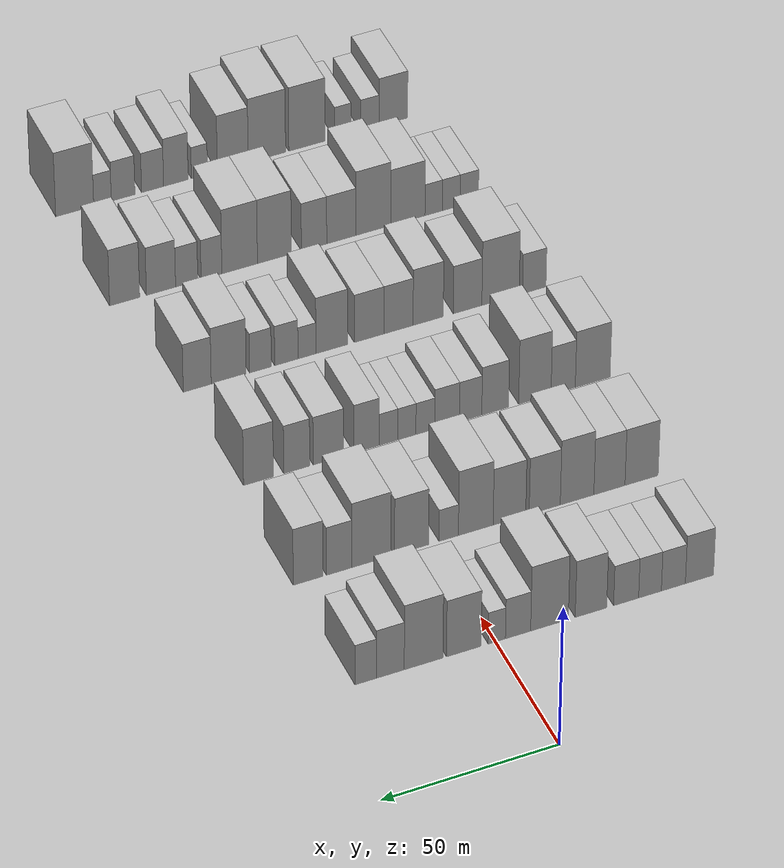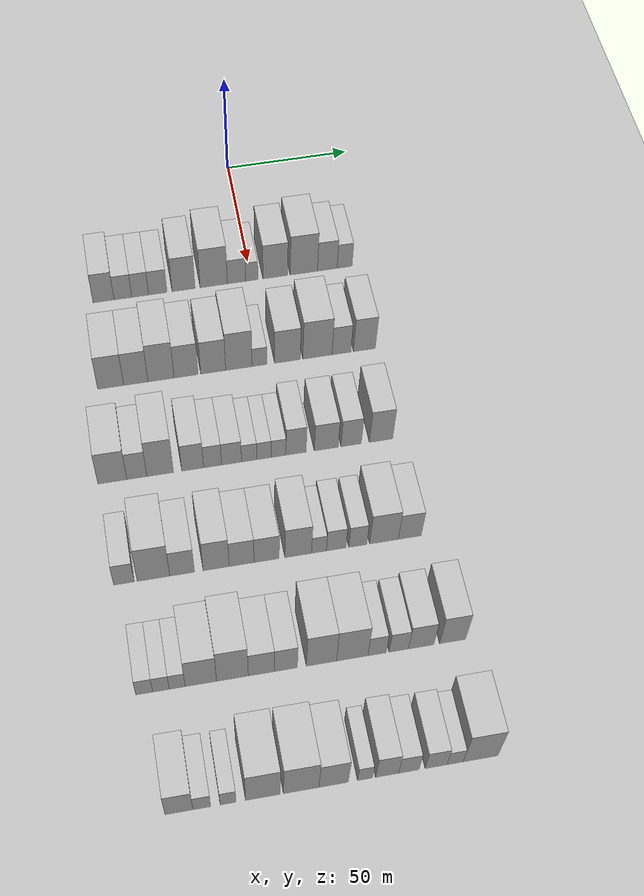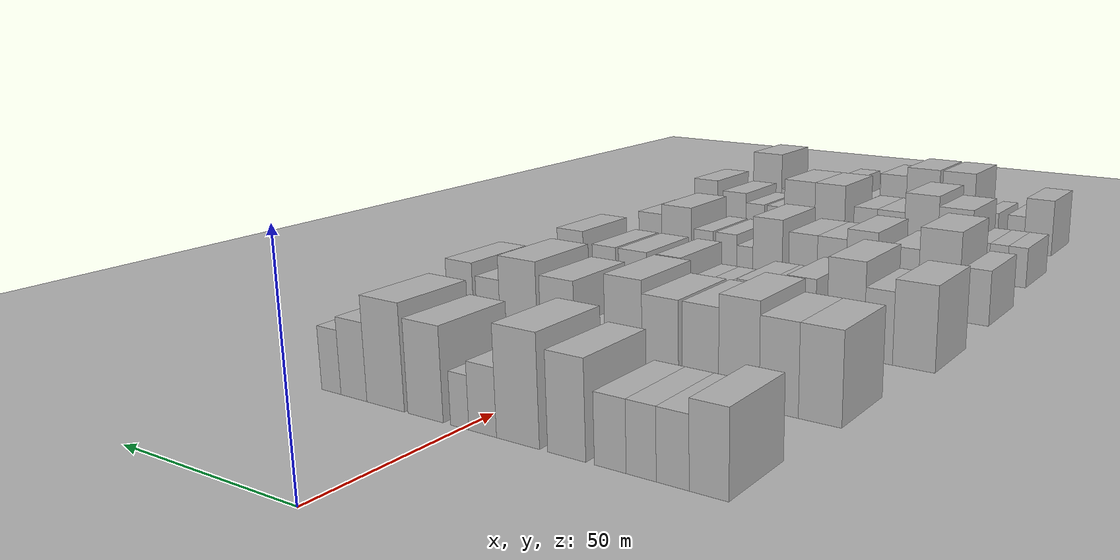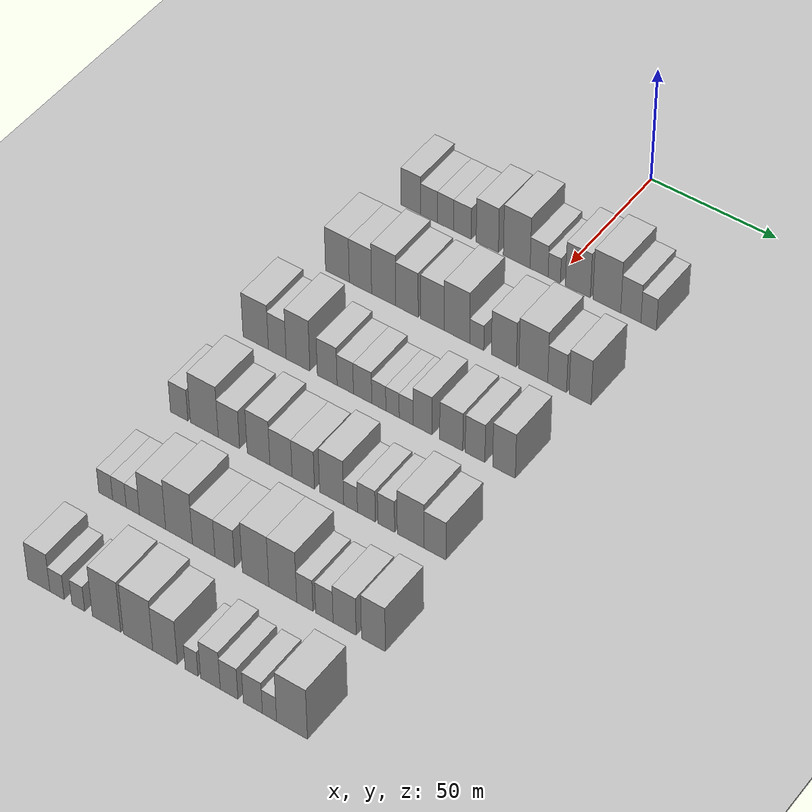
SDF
<sdf version="1.6">
 <world name="default">
  <include><name>ground_plane_1</name><uri>model://HANNAS_ground_plane</uri></include>
  <include>
   <name>ground_plane_2</name>
   <uri>model://HANNAS_ground_plane</uri>
   <pose>100 0 0  0 0 0</pose>
  </include>
  <model name="building_59">
   <static>1</static>
   <pose>50.0000 -58.4191 0 0.000000 0.000000 0.000000</pose>
   <link name="link">
    <pose>0 0 9.00 0 0 0</pose>
    <collision name="collision"><geometry><box><size>20.0000 8.1674 18.0000</size></box></geometry></collision>
    <visual name="visual">
     <cast_shadows>0</cast_shadows>
     <geometry><box><size>20.0000 8.1674 18.0000</size></box></geometry>
     <material>
      <script>
       <uri>model://HANNAS_wall/materials/scripts</uri>
       <uri>model://HANNAS_wall/materials/textures</uri>
       <name>vrc/HANNAS_wall</name>
      </script>
     </material>
    </visual>
   </link>
  </model>
  <model name="building_60">
   <static>1</static>
   <pose>50.0000 -50.8502 0 0.000000 0.000000 0.000000</pose>
   <link name="link">
    <pose>0 0 7.50 0 0 0</pose>
    <collision name="collision"><geometry><box><size>20.0000 6.9702 15.0000</size></box></geometry></collision>
    <visual name="visual">
     <cast_shadows>0</cast_shadows>
     <geometry><box><size>20.0000 6.9702 15.0000</size></box></geometry>
     <material>
      <script>
       <uri>model://HANNAS_wall/materials/scripts</uri>
       <uri>model://HANNAS_wall/materials/textures</uri>
       <name>vrc/HANNAS_wall</name>
      </script>
     </material>
    </visual>
   </link>
  </model>
  <model name="building_61">
   <static>1</static>
   <pose>50.0000 -44.0706 0 0.000000 0.000000 0.000000</pose>
   <link name="link">
    <pose>0 0 7.50 0 0 0</pose>
    <collision name="collision"><geometry><box><size>20.0000 6.5891 15.0000</size></box></geometry></collision>
    <visual name="visual">
     <cast_shadows>0</cast_shadows>
     <geometry><box><size>20.0000 6.5891 15.0000</size></box></geometry>
     <material>
      <script>
       <uri>model://HANNAS_wall/materials/scripts</uri>
       <uri>model://HANNAS_wall/materials/textures</uri>
       <name>vrc/HANNAS_wall</name>
      </script>
     </material>
    </visual>
   </link>
  </model>
  <model name="building_62">
   <static>1</static>
   <pose>50.0000 -37.1609 0 0.000000 0.000000 0.000000</pose>
   <link name="link">
    <pose>0 0 7.50 0 0 0</pose>
    <collision name="collision"><geometry><box><size>20.0000 7.2303 15.0000</size></box></geometry></collision>
    <visual name="visual">
     <cast_shadows>0</cast_shadows>
     <geometry><box><size>20.0000 7.2303 15.0000</size></box></geometry>
     <material>
      <script>
       <uri>model://HANNAS_wall/materials/scripts</uri>
       <uri>model://HANNAS_wall/materials/textures</uri>
       <name>vrc/HANNAS_wall</name>
      </script>
     </material>
    </visual>
   </link>
  </model>
  <model name="building_63">
   <static>1</static>
   <pose>50.0000 -27.0163 0 0.000000 0.000000 0.000000</pose>
   <link name="link">
    <pose>0 0 10.50 0 0 0</pose>
    <collision name="collision"><geometry><box><size>20.0000 9.0587 21.0000</size></box></geometry></collision>
    <visual name="visual">
     <cast_shadows>0</cast_shadows>
     <geometry><box><size>20.0000 9.0587 21.0000</size></box></geometry>
     <material>
      <script>
       <uri>model://HANNAS_wall/materials/scripts</uri>
       <uri>model://HANNAS_wall/materials/textures</uri>
       <name>vrc/HANNAS_wall</name>
      </script>
     </material>
    </visual>
   </link>
  </model>
  <model name="building_64">
   <static>1</static>
   <pose>50.0000 -15.0868 0 0.000000 0.000000 0.000000</pose>
   <link name="link">
    <pose>0 0 12.00 0 0 0</pose>
    <collision name="collision"><geometry><box><size>20.0000 10.8004 24.0000</size></box></geometry></collision>
    <visual name="visual">
     <cast_shadows>0</cast_shadows>
     <geometry><box><size>20.0000 10.8004 24.0000</size></box></geometry>
     <material>
      <script>
       <uri>model://HANNAS_wall/materials/scripts</uri>
       <uri>model://HANNAS_wall/materials/textures</uri>
       <name>vrc/HANNAS_wall</name>
      </script>
     </material>
    </visual>
   </link>
  </model>
  <model name="building_65">
   <static>1</static>
   <pose>50.0000 -6.0806 0 0.000000 0.000000 0.000000</pose>
   <link name="link">
    <pose>0 0 7.50 0 0 0</pose>
    <collision name="collision"><geometry><box><size>20.0000 7.2119 15.0000</size></box></geometry></collision>
    <visual name="visual">
     <cast_shadows>0</cast_shadows>
     <geometry><box><size>20.0000 7.2119 15.0000</size></box></geometry>
     <material>
      <script>
       <uri>model://HANNAS_wall/materials/scripts</uri>
       <uri>model://HANNAS_wall/materials/textures</uri>
       <name>vrc/HANNAS_wall</name>
      </script>
     </material>
    </visual>
   </link>
  </model>
  <model name="building_66">
   <static>1</static>
   <pose>50.0000 -0.0146 0 0.000000 0.000000 0.000000</pose>
   <link name="link">
    <pose>0 0 6.00 0 0 0</pose>
    <collision name="collision"><geometry><box><size>20.0000 4.9202 12.0000</size></box></geometry></collision>
    <visual name="visual">
     <cast_shadows>0</cast_shadows>
     <geometry><box><size>20.0000 4.9202 12.0000</size></box></geometry>
     <material>
      <script>
       <uri>model://HANNAS_wall/materials/scripts</uri>
       <uri>model://HANNAS_wall/materials/textures</uri>
       <name>vrc/HANNAS_wall</name>
      </script>
     </material>
    </visual>
   </link>
  </model>
  <model name="building_67">
   <static>1</static>
   <pose>50.0000 9.3892 0 0.000000 0.000000 0.000000</pose>
   <link name="link">
    <pose>0 0 10.50 0 0 0</pose>
    <collision name="collision"><geometry><box><size>20.0000 9.8873 21.0000</size></box></geometry></collision>
    <visual name="visual">
     <cast_shadows>0</cast_shadows>
     <geometry><box><size>20.0000 9.8873 21.0000</size></box></geometry>
     <material>
      <script>
       <uri>model://HANNAS_wall/materials/scripts</uri>
       <uri>model://HANNAS_wall/materials/textures</uri>
       <name>vrc/HANNAS_wall</name>
      </script>
     </material>
    </visual>
   </link>
  </model>
  <model name="building_68">
   <static>1</static>
   <pose>50.0000 20.8231 0 0.000000 0.000000 0.000000</pose>
   <link name="link">
    <pose>0 0 12.00 0 0 0</pose>
    <collision name="collision"><geometry><box><size>20.0000 10.9804 24.0000</size></box></geometry></collision>
    <visual name="visual">
     <cast_shadows>0</cast_shadows>
     <geometry><box><size>20.0000 10.9804 24.0000</size></box></geometry>
     <material>
      <script>
       <uri>model://HANNAS_wall/materials/scripts</uri>
       <uri>model://HANNAS_wall/materials/textures</uri>
       <name>vrc/HANNAS_wall</name>
      </script>
     </material>
    </visual>
   </link>
  </model>
  <model name="building_69">
   <static>1</static>
   <pose>50.0000 30.2630 0 0.000000 0.000000 0.000000</pose>
   <link name="link">
    <pose>0 0 9.00 0 0 0</pose>
    <collision name="collision"><geometry><box><size>20.0000 7.8994 18.0000</size></box></geometry></collision>
    <visual name="visual">
     <cast_shadows>0</cast_shadows>
     <geometry><box><size>20.0000 7.8994 18.0000</size></box></geometry>
     <material>
      <script>
       <uri>model://HANNAS_wall/materials/scripts</uri>
       <uri>model://HANNAS_wall/materials/textures</uri>
       <name>vrc/HANNAS_wall</name>
      </script>
     </material>
    </visual>
   </link>
  </model>
  <model name="building_70">
   <static>1</static>
   <pose>50.0000 37.2250 0 0.000000 0.000000 0.000000</pose>
   <link name="link">
    <pose>0 0 7.50 0 0 0</pose>
    <collision name="collision"><geometry><box><size>20.0000 6.0246 15.0000</size></box></geometry></collision>
    <visual name="visual">
     <cast_shadows>0</cast_shadows>
     <geometry><box><size>20.0000 6.0246 15.0000</size></box></geometry>
     <material>
      <script>
       <uri>model://HANNAS_wall/materials/scripts</uri>
       <uri>model://HANNAS_wall/materials/textures</uri>
       <name>vrc/HANNAS_wall</name>
      </script>
     </material>
    </visual>
   </link>
  </model>
  <model name="building_191">
   <static>1</static>
   <pose>90.0000 -60.1124 0 0.000000 0.000000 0.000000</pose>
   <link name="link">
    <pose>0 0 10.50 0 0 0</pose>
    <collision name="collision"><geometry><box><size>20.0000 9.7586 21.0000</size></box></geometry></collision>
    <visual name="visual">
     <cast_shadows>0</cast_shadows>
     <geometry><box><size>20.0000 9.7586 21.0000</size></box></geometry>
     <material>
      <script>
       <uri>model://HANNAS_wall/materials/scripts</uri>
       <uri>model://HANNAS_wall/materials/textures</uri>
       <name>vrc/HANNAS_wall</name>
      </script>
     </material>
    </visual>
   </link>
  </model>
  <model name="building_192">
   <static>1</static>
   <pose>90.0000 -50.6637 0 0.000000 0.000000 0.000000</pose>
   <link name="link">
    <pose>0 0 10.50 0 0 0</pose>
    <collision name="collision"><geometry><box><size>20.0000 9.1388 21.0000</size></box></geometry></collision>
    <visual name="visual">
     <cast_shadows>0</cast_shadows>
     <geometry><box><size>20.0000 9.1388 21.0000</size></box></geometry>
     <material>
      <script>
       <uri>model://HANNAS_wall/materials/scripts</uri>
       <uri>model://HANNAS_wall/materials/textures</uri>
       <name>vrc/HANNAS_wall</name>
      </script>
     </material>
    </visual>
   </link>
  </model>
  <model name="building_193">
   <static>1</static>
   <pose>90.0000 -41.1767 0 0.000000 0.000000 0.000000</pose>
   <link name="link">
    <pose>0 0 12.00 0 0 0</pose>
    <collision name="collision"><geometry><box><size>20.0000 9.8351 24.0000</size></box></geometry></collision>
    <visual name="visual">
     <cast_shadows>0</cast_shadows>
     <geometry><box><size>20.0000 9.8351 24.0000</size></box></geometry>
     <material>
      <script>
       <uri>model://HANNAS_wall/materials/scripts</uri>
       <uri>model://HANNAS_wall/materials/textures</uri>
       <name>vrc/HANNAS_wall</name>
      </script>
     </material>
    </visual>
   </link>
  </model>
  <model name="building_194">
   <static>1</static>
   <pose>90.0000 -31.7213 0 0.000000 0.000000 0.000000</pose>
   <link name="link">
    <pose>0 0 10.50 0 0 0</pose>
    <collision name="collision"><geometry><box><size>20.0000 9.0758 21.0000</size></box></geometry></collision>
    <visual name="visual">
     <cast_shadows>0</cast_shadows>
     <geometry><box><size>20.0000 9.0758 21.0000</size></box></geometry>
     <material>
      <script>
       <uri>model://HANNAS_wall/materials/scripts</uri>
       <uri>model://HANNAS_wall/materials/textures</uri>
       <name>vrc/HANNAS_wall</name>
      </script>
     </material>
    </visual>
   </link>
  </model>
  <model name="building_195">
   <static>1</static>
   <pose>90.0000 -21.4404 0 0.000000 0.000000 0.000000</pose>
   <link name="link">
    <pose>0 0 10.50 0 0 0</pose>
    <collision name="collision"><geometry><box><size>20.0000 9.4860 21.0000</size></box></geometry></collision>
    <visual name="visual">
     <cast_shadows>0</cast_shadows>
     <geometry><box><size>20.0000 9.4860 21.0000</size></box></geometry>
     <material>
      <script>
       <uri>model://HANNAS_wall/materials/scripts</uri>
       <uri>model://HANNAS_wall/materials/textures</uri>
       <name>vrc/HANNAS_wall</name>
      </script>
     </material>
    </visual>
   </link>
  </model>
  <model name="building_196">
   <static>1</static>
   <pose>90.0000 -11.6598 0 0.000000 0.000000 0.000000</pose>
   <link name="link">
    <pose>0 0 12.00 0 0 0</pose>
    <collision name="collision"><geometry><box><size>20.0000 10.0751 24.0000</size></box></geometry></collision>
    <visual name="visual">
     <cast_shadows>0</cast_shadows>
     <geometry><box><size>20.0000 10.0751 24.0000</size></box></geometry>
     <material>
      <script>
       <uri>model://HANNAS_wall/materials/scripts</uri>
       <uri>model://HANNAS_wall/materials/textures</uri>
       <name>vrc/HANNAS_wall</name>
      </script>
     </material>
    </visual>
   </link>
  </model>
  <model name="building_197">
   <static>1</static>
   <pose>90.0000 -3.8159 0 0.000000 0.000000 0.000000</pose>
   <link name="link">
    <pose>0 0 6.00 0 0 0</pose>
    <collision name="collision"><geometry><box><size>20.0000 5.6127 12.0000</size></box></geometry></collision>
    <visual name="visual">
     <cast_shadows>0</cast_shadows>
     <geometry><box><size>20.0000 5.6127 12.0000</size></box></geometry>
     <material>
      <script>
       <uri>model://HANNAS_wall/materials/scripts</uri>
       <uri>model://HANNAS_wall/materials/textures</uri>
       <name>vrc/HANNAS_wall</name>
      </script>
     </material>
    </visual>
   </link>
  </model>
  <model name="building_198">
   <static>1</static>
   <pose>90.0000 6.9094 0 0.000000 0.000000 0.000000</pose>
   <link name="link">
    <pose>0 0 10.50 0 0 0</pose>
    <collision name="collision"><geometry><box><size>20.0000 9.8378 21.0000</size></box></geometry></collision>
    <visual name="visual">
     <cast_shadows>0</cast_shadows>
     <geometry><box><size>20.0000 9.8378 21.0000</size></box></geometry>
     <material>
      <script>
       <uri>model://HANNAS_wall/materials/scripts</uri>
       <uri>model://HANNAS_wall/materials/textures</uri>
       <name>vrc/HANNAS_wall</name>
      </script>
     </material>
    </visual>
   </link>
  </model>
  <model name="building_199">
   <static>1</static>
   <pose>90.0000 18.4628 0 0.000000 0.000000 0.000000</pose>
   <link name="link">
    <pose>0 0 12.00 0 0 0</pose>
    <collision name="collision"><geometry><box><size>20.0000 11.2691 24.0000</size></box></geometry></collision>
    <visual name="visual">
     <cast_shadows>0</cast_shadows>
     <geometry><box><size>20.0000 11.2691 24.0000</size></box></geometry>
     <material>
      <script>
       <uri>model://HANNAS_wall/materials/scripts</uri>
       <uri>model://HANNAS_wall/materials/textures</uri>
       <name>vrc/HANNAS_wall</name>
      </script>
     </material>
    </visual>
   </link>
  </model>
  <model name="building_200">
   <static>1</static>
   <pose>90.0000 27.7453 0 0.000000 0.000000 0.000000</pose>
   <link name="link">
    <pose>0 0 9.00 0 0 0</pose>
    <collision name="collision"><geometry><box><size>20.0000 7.2960 18.0000</size></box></geometry></collision>
    <visual name="visual">
     <cast_shadows>0</cast_shadows>
     <geometry><box><size>20.0000 7.2960 18.0000</size></box></geometry>
     <material>
      <script>
       <uri>model://HANNAS_wall/materials/scripts</uri>
       <uri>model://HANNAS_wall/materials/textures</uri>
       <name>vrc/HANNAS_wall</name>
      </script>
     </material>
    </visual>
   </link>
  </model>
  <model name="building_201">
   <static>1</static>
   <pose>90.0000 36.6252 0 0.000000 0.000000 0.000000</pose>
   <link name="link">
    <pose>0 0 10.50 0 0 0</pose>
    <collision name="collision"><geometry><box><size>20.0000 8.4638 21.0000</size></box></geometry></collision>
    <visual name="visual">
     <cast_shadows>0</cast_shadows>
     <geometry><box><size>20.0000 8.4638 21.0000</size></box></geometry>
     <material>
      <script>
       <uri>model://HANNAS_wall/materials/scripts</uri>
       <uri>model://HANNAS_wall/materials/textures</uri>
       <name>vrc/HANNAS_wall</name>
      </script>
     </material>
    </visual>
   </link>
  </model>
  <model name="building_320">
   <static>1</static>
   <pose>130.0000 -63.9977 0 0.000000 0.000000 0.000000</pose>
   <link name="link">
    <pose>0 0 10.50 0 0 0</pose>
    <collision name="collision"><geometry><box><size>20.0000 10.3634 21.0000</size></box></geometry></collision>
    <visual name="visual">
     <cast_shadows>0</cast_shadows>
     <geometry><box><size>20.0000 10.3634 21.0000</size></box></geometry>
     <material>
      <script>
       <uri>model://HANNAS_wall/materials/scripts</uri>
       <uri>model://HANNAS_wall/materials/textures</uri>
       <name>vrc/HANNAS_wall</name>
      </script>
     </material>
    </visual>
   </link>
  </model>
  <model name="building_321">
   <static>1</static>
   <pose>130.0000 -55.2068 0 0.000000 0.000000 0.000000</pose>
   <link name="link">
    <pose>0 0 9.00 0 0 0</pose>
    <collision name="collision"><geometry><box><size>20.0000 7.2185 18.0000</size></box></geometry></collision>
    <visual name="visual">
     <cast_shadows>0</cast_shadows>
     <geometry><box><size>20.0000 7.2185 18.0000</size></box></geometry>
     <material>
      <script>
       <uri>model://HANNAS_wall/materials/scripts</uri>
       <uri>model://HANNAS_wall/materials/textures</uri>
       <name>vrc/HANNAS_wall</name>
      </script>
     </material>
    </visual>
   </link>
  </model>
  <model name="building_322">
   <static>1</static>
   <pose>130.0000 -46.7938 0 0.000000 0.000000 0.000000</pose>
   <link name="link">
    <pose>0 0 12.00 0 0 0</pose>
    <collision name="collision"><geometry><box><size>20.0000 9.6073 24.0000</size></box></geometry></collision>
    <visual name="visual">
     <cast_shadows>0</cast_shadows>
     <geometry><box><size>20.0000 9.6073 24.0000</size></box></geometry>
     <material>
      <script>
       <uri>model://HANNAS_wall/materials/scripts</uri>
       <uri>model://HANNAS_wall/materials/textures</uri>
       <name>vrc/HANNAS_wall</name>
      </script>
     </material>
    </visual>
   </link>
  </model>
  <model name="building_323">
   <static>1</static>
   <pose>130.0000 -35.0329 0 0.000000 0.000000 0.000000</pose>
   <link name="link">
    <pose>0 0 9.00 0 0 0</pose>
    <collision name="collision"><geometry><box><size>20.0000 7.9145 18.0000</size></box></geometry></collision>
    <visual name="visual">
     <cast_shadows>0</cast_shadows>
     <geometry><box><size>20.0000 7.9145 18.0000</size></box></geometry>
     <material>
      <script>
       <uri>model://HANNAS_wall/materials/scripts</uri>
       <uri>model://HANNAS_wall/materials/textures</uri>
       <name>vrc/HANNAS_wall</name>
      </script>
     </material>
    </visual>
   </link>
  </model>
  <model name="building_324">
   <static>1</static>
   <pose>130.0000 -27.8001 0 0.000000 0.000000 0.000000</pose>
   <link name="link">
    <pose>0 0 7.50 0 0 0</pose>
    <collision name="collision"><geometry><box><size>20.0000 6.5511 15.0000</size></box></geometry></collision>
    <visual name="visual">
     <cast_shadows>0</cast_shadows>
     <geometry><box><size>20.0000 6.5511 15.0000</size></box></geometry>
     <material>
      <script>
       <uri>model://HANNAS_wall/materials/scripts</uri>
       <uri>model://HANNAS_wall/materials/textures</uri>
       <name>vrc/HANNAS_wall</name>
      </script>
     </material>
    </visual>
   </link>
  </model>
  <model name="building_325">
   <static>1</static>
   <pose>130.0000 -20.8818 0 0.000000 0.000000 0.000000</pose>
   <link name="link">
    <pose>0 0 7.50 0 0 0</pose>
    <collision name="collision"><geometry><box><size>20.0000 7.2855 15.0000</size></box></geometry></collision>
    <visual name="visual">
     <cast_shadows>0</cast_shadows>
     <geometry><box><size>20.0000 7.2855 15.0000</size></box></geometry>
     <material>
      <script>
       <uri>model://HANNAS_wall/materials/scripts</uri>
       <uri>model://HANNAS_wall/materials/textures</uri>
       <name>vrc/HANNAS_wall</name>
      </script>
     </material>
    </visual>
   </link>
  </model>
  <model name="building_326">
   <static>1</static>
   <pose>130.0000 -14.4613 0 0.000000 0.000000 0.000000</pose>
   <link name="link">
    <pose>0 0 6.00 0 0 0</pose>
    <collision name="collision"><geometry><box><size>20.0000 5.5555 12.0000</size></box></geometry></collision>
    <visual name="visual">
     <cast_shadows>0</cast_shadows>
     <geometry><box><size>20.0000 5.5555 12.0000</size></box></geometry>
     <material>
      <script>
       <uri>model://HANNAS_wall/materials/scripts</uri>
       <uri>model://HANNAS_wall/materials/textures</uri>
       <name>vrc/HANNAS_wall</name>
      </script>
     </material>
    </visual>
   </link>
  </model>
  <model name="building_327">
   <static>1</static>
   <pose>130.0000 -9.0461 0 0.000000 0.000000 0.000000</pose>
   <link name="link">
    <pose>0 0 6.00 0 0 0</pose>
    <collision name="collision"><geometry><box><size>20.0000 5.2749 12.0000</size></box></geometry></collision>
    <visual name="visual">
     <cast_shadows>0</cast_shadows>
     <geometry><box><size>20.0000 5.2749 12.0000</size></box></geometry>
     <material>
      <script>
       <uri>model://HANNAS_wall/materials/scripts</uri>
       <uri>model://HANNAS_wall/materials/textures</uri>
       <name>vrc/HANNAS_wall</name>
      </script>
     </material>
    </visual>
   </link>
  </model>
  <model name="building_328">
   <static>1</static>
   <pose>130.0000 -3.6886 0 0.000000 0.000000 0.000000</pose>
   <link name="link">
    <pose>0 0 6.00 0 0 0</pose>
    <collision name="collision"><geometry><box><size>20.0000 5.4401 12.0000</size></box></geometry></collision>
    <visual name="visual">
     <cast_shadows>0</cast_shadows>
     <geometry><box><size>20.0000 5.4401 12.0000</size></box></geometry>
     <material>
      <script>
       <uri>model://HANNAS_wall/materials/scripts</uri>
       <uri>model://HANNAS_wall/materials/textures</uri>
       <name>vrc/HANNAS_wall</name>
      </script>
     </material>
    </visual>
   </link>
  </model>
  <model name="building_329">
   <static>1</static>
   <pose>130.0000 2.7324 0 0.000000 0.000000 0.000000</pose>
   <link name="link">
    <pose>0 0 9.00 0 0 0</pose>
    <collision name="collision"><geometry><box><size>20.0000 7.4018 18.0000</size></box></geometry></collision>
    <visual name="visual">
     <cast_shadows>0</cast_shadows>
     <geometry><box><size>20.0000 7.4018 18.0000</size></box></geometry>
     <material>
      <script>
       <uri>model://HANNAS_wall/materials/scripts</uri>
       <uri>model://HANNAS_wall/materials/textures</uri>
       <name>vrc/HANNAS_wall</name>
      </script>
     </material>
    </visual>
   </link>
  </model>
  <model name="building_330">
   <static>1</static>
   <pose>130.0000 13.8859 0 0.000000 0.000000 0.000000</pose>
   <link name="link">
    <pose>0 0 9.00 0 0 0</pose>
    <collision name="collision"><geometry><box><size>20.0000 8.9053 18.0000</size></box></geometry></collision>
    <visual name="visual">
     <cast_shadows>0</cast_shadows>
     <geometry><box><size>20.0000 8.9053 18.0000</size></box></geometry>
     <material>
      <script>
       <uri>model://HANNAS_wall/materials/scripts</uri>
       <uri>model://HANNAS_wall/materials/textures</uri>
       <name>vrc/HANNAS_wall</name>
      </script>
     </material>
    </visual>
   </link>
  </model>
  <model name="building_331">
   <static>1</static>
   <pose>130.0000 23.1066 0 0.000000 0.000000 0.000000</pose>
   <link name="link">
    <pose>0 0 9.00 0 0 0</pose>
    <collision name="collision"><geometry><box><size>20.0000 7.5360 18.0000</size></box></geometry></collision>
    <visual name="visual">
     <cast_shadows>0</cast_shadows>
     <geometry><box><size>20.0000 7.5360 18.0000</size></box></geometry>
     <material>
      <script>
       <uri>model://HANNAS_wall/materials/scripts</uri>
       <uri>model://HANNAS_wall/materials/textures</uri>
       <name>vrc/HANNAS_wall</name>
      </script>
     </material>
    </visual>
   </link>
  </model>
  <model name="building_332">
   <static>1</static>
   <pose>130.0000 34.2023 0 0.000000 0.000000 0.000000</pose>
   <link name="link">
    <pose>0 0 10.50 0 0 0</pose>
    <collision name="collision"><geometry><box><size>20.0000 8.6555 21.0000</size></box></geometry></collision>
    <visual name="visual">
     <cast_shadows>0</cast_shadows>
     <geometry><box><size>20.0000 8.6555 21.0000</size></box></geometry>
     <material>
      <script>
       <uri>model://HANNAS_wall/materials/scripts</uri>
       <uri>model://HANNAS_wall/materials/textures</uri>
       <name>vrc/HANNAS_wall</name>
      </script>
     </material>
    </visual>
   </link>
  </model>
  <model name="building_460">
   <static>1</static>
   <pose>170.0000 -64.5456 0 0.000000 0.000000 0.000000</pose>
   <link name="link">
    <pose>0 0 7.50 0 0 0</pose>
    <collision name="collision"><geometry><box><size>20.0000 7.0696 15.0000</size></box></geometry></collision>
    <visual name="visual">
     <cast_shadows>0</cast_shadows>
     <geometry><box><size>20.0000 7.0696 15.0000</size></box></geometry>
     <material>
      <script>
       <uri>model://HANNAS_wall/materials/scripts</uri>
       <uri>model://HANNAS_wall/materials/textures</uri>
       <name>vrc/HANNAS_wall</name>
      </script>
     </material>
    </visual>
   </link>
  </model>
  <model name="building_461">
   <static>1</static>
   <pose>170.0000 -54.3948 0 0.000000 0.000000 0.000000</pose>
   <link name="link">
    <pose>0 0 12.00 0 0 0</pose>
    <collision name="collision"><geometry><box><size>20.0000 11.2319 24.0000</size></box></geometry></collision>
    <visual name="visual">
     <cast_shadows>0</cast_shadows>
     <geometry><box><size>20.0000 11.2319 24.0000</size></box></geometry>
     <material>
      <script>
       <uri>model://HANNAS_wall/materials/scripts</uri>
       <uri>model://HANNAS_wall/materials/textures</uri>
       <name>vrc/HANNAS_wall</name>
      </script>
     </material>
    </visual>
   </link>
  </model>
  <model name="building_462">
   <static>1</static>
   <pose>170.0000 -44.4971 0 0.000000 0.000000 0.000000</pose>
   <link name="link">
    <pose>0 0 9.00 0 0 0</pose>
    <collision name="collision"><geometry><box><size>20.0000 8.5636 18.0000</size></box></geometry></collision>
    <visual name="visual">
     <cast_shadows>0</cast_shadows>
     <geometry><box><size>20.0000 8.5636 18.0000</size></box></geometry>
     <material>
      <script>
       <uri>model://HANNAS_wall/materials/scripts</uri>
       <uri>model://HANNAS_wall/materials/textures</uri>
       <name>vrc/HANNAS_wall</name>
      </script>
     </material>
    </visual>
   </link>
  </model>
  <model name="building_463">
   <static>1</static>
   <pose>170.0000 -32.6959 0 0.000000 0.000000 0.000000</pose>
   <link name="link">
    <pose>0 0 10.50 0 0 0</pose>
    <collision name="collision"><geometry><box><size>20.0000 9.0387 21.0000</size></box></geometry></collision>
    <visual name="visual">
     <cast_shadows>0</cast_shadows>
     <geometry><box><size>20.0000 9.0387 21.0000</size></box></geometry>
     <material>
      <script>
       <uri>model://HANNAS_wall/materials/scripts</uri>
       <uri>model://HANNAS_wall/materials/textures</uri>
       <name>vrc/HANNAS_wall</name>
      </script>
     </material>
    </visual>
   </link>
  </model>
  <model name="building_464">
   <static>1</static>
   <pose>170.0000 -23.8065 0 0.000000 0.000000 0.000000</pose>
   <link name="link">
    <pose>0 0 9.00 0 0 0</pose>
    <collision name="collision"><geometry><box><size>20.0000 8.7401 18.0000</size></box></geometry></collision>
    <visual name="visual">
     <cast_shadows>0</cast_shadows>
     <geometry><box><size>20.0000 8.7401 18.0000</size></box></geometry>
     <material>
      <script>
       <uri>model://HANNAS_wall/materials/scripts</uri>
       <uri>model://HANNAS_wall/materials/textures</uri>
       <name>vrc/HANNAS_wall</name>
      </script>
     </material>
    </visual>
   </link>
  </model>
  <model name="building_465">
   <static>1</static>
   <pose>170.0000 -15.0543 0 0.000000 0.000000 0.000000</pose>
   <link name="link">
    <pose>0 0 9.00 0 0 0</pose>
    <collision name="collision"><geometry><box><size>20.0000 8.7643 18.0000</size></box></geometry></collision>
    <visual name="visual">
     <cast_shadows>0</cast_shadows>
     <geometry><box><size>20.0000 8.7643 18.0000</size></box></geometry>
     <material>
      <script>
       <uri>model://HANNAS_wall/materials/scripts</uri>
       <uri>model://HANNAS_wall/materials/textures</uri>
       <name>vrc/HANNAS_wall</name>
      </script>
     </material>
    </visual>
   </link>
  </model>
  <model name="building_466">
   <static>1</static>
   <pose>170.0000 -3.9872 0 0.000000 0.000000 0.000000</pose>
   <link name="link">
    <pose>0 0 10.50 0 0 0</pose>
    <collision name="collision"><geometry><box><size>20.0000 9.3698 21.0000</size></box></geometry></collision>
    <visual name="visual">
     <cast_shadows>0</cast_shadows>
     <geometry><box><size>20.0000 9.3698 21.0000</size></box></geometry>
     <material>
      <script>
       <uri>model://HANNAS_wall/materials/scripts</uri>
       <uri>model://HANNAS_wall/materials/textures</uri>
       <name>vrc/HANNAS_wall</name>
      </script>
     </material>
    </visual>
   </link>
  </model>
  <model name="building_467">
   <static>1</static>
   <pose>170.0000 3.3466 0 0.000000 0.000000 0.000000</pose>
   <link name="link">
    <pose>0 0 6.00 0 0 0</pose>
    <collision name="collision"><geometry><box><size>20.0000 5.2977 12.0000</size></box></geometry></collision>
    <visual name="visual">
     <cast_shadows>0</cast_shadows>
     <geometry><box><size>20.0000 5.2977 12.0000</size></box></geometry>
     <material>
      <script>
       <uri>model://HANNAS_wall/materials/scripts</uri>
       <uri>model://HANNAS_wall/materials/textures</uri>
       <name>vrc/HANNAS_wall</name>
      </script>
     </material>
    </visual>
   </link>
  </model>
  <model name="building_468">
   <static>1</static>
   <pose>170.0000 9.4338 0 0.000000 0.000000 0.000000</pose>
   <link name="link">
    <pose>0 0 7.50 0 0 0</pose>
    <collision name="collision"><geometry><box><size>20.0000 6.8768 15.0000</size></box></geometry></collision>
    <visual name="visual">
     <cast_shadows>0</cast_shadows>
     <geometry><box><size>20.0000 6.8768 15.0000</size></box></geometry>
     <material>
      <script>
       <uri>model://HANNAS_wall/materials/scripts</uri>
       <uri>model://HANNAS_wall/materials/textures</uri>
       <name>vrc/HANNAS_wall</name>
      </script>
     </material>
    </visual>
   </link>
  </model>
  <model name="building_469">
   <static>1</static>
   <pose>170.0000 17.0723 0 0.000000 0.000000 0.000000</pose>
   <link name="link">
    <pose>0 0 7.50 0 0 0</pose>
    <collision name="collision"><geometry><box><size>20.0000 6.4001 15.0000</size></box></geometry></collision>
    <visual name="visual">
     <cast_shadows>0</cast_shadows>
     <geometry><box><size>20.0000 6.4001 15.0000</size></box></geometry>
     <material>
      <script>
       <uri>model://HANNAS_wall/materials/scripts</uri>
       <uri>model://HANNAS_wall/materials/textures</uri>
       <name>vrc/HANNAS_wall</name>
      </script>
     </material>
    </visual>
   </link>
  </model>
  <model name="building_470">
   <static>1</static>
   <pose>170.0000 26.4018 0 0.000000 0.000000 0.000000</pose>
   <link name="link">
    <pose>0 0 10.50 0 0 0</pose>
    <collision name="collision"><geometry><box><size>20.0000 10.2589 21.0000</size></box></geometry></collision>
    <visual name="visual">
     <cast_shadows>0</cast_shadows>
     <geometry><box><size>20.0000 10.2589 21.0000</size></box></geometry>
     <material>
      <script>
       <uri>model://HANNAS_wall/materials/scripts</uri>
       <uri>model://HANNAS_wall/materials/textures</uri>
       <name>vrc/HANNAS_wall</name>
      </script>
     </material>
    </visual>
   </link>
  </model>
  <model name="building_471">
   <static>1</static>
   <pose>170.0000 35.6232 0 0.000000 0.000000 0.000000</pose>
   <link name="link">
    <pose>0 0 9.00 0 0 0</pose>
    <collision name="collision"><geometry><box><size>20.0000 8.1839 18.0000</size></box></geometry></collision>
    <visual name="visual">
     <cast_shadows>0</cast_shadows>
     <geometry><box><size>20.0000 8.1839 18.0000</size></box></geometry>
     <material>
      <script>
       <uri>model://HANNAS_wall/materials/scripts</uri>
       <uri>model://HANNAS_wall/materials/textures</uri>
       <name>vrc/HANNAS_wall</name>
      </script>
     </material>
    </visual>
   </link>
  </model>
  <model name="building_603">
   <static>1</static>
   <pose>210.0000 -62.5998 0 0.000000 0.000000 0.000000</pose>
   <link name="link">
    <pose>0 0 6.00 0 0 0</pose>
    <collision name="collision"><geometry><box><size>20.0000 5.5636 12.0000</size></box></geometry></collision>
    <visual name="visual">
     <cast_shadows>0</cast_shadows>
     <geometry><box><size>20.0000 5.5636 12.0000</size></box></geometry>
     <material>
      <script>
       <uri>model://HANNAS_wall/materials/scripts</uri>
       <uri>model://HANNAS_wall/materials/textures</uri>
       <name>vrc/HANNAS_wall</name>
      </script>
     </material>
    </visual>
   </link>
  </model>
  <model name="building_604">
   <static>1</static>
   <pose>210.0000 -57.1006 0 0.000000 0.000000 0.000000</pose>
   <link name="link">
    <pose>0 0 6.00 0 0 0</pose>
    <collision name="collision"><geometry><box><size>20.0000 5.4348 12.0000</size></box></geometry></collision>
    <visual name="visual">
     <cast_shadows>0</cast_shadows>
     <geometry><box><size>20.0000 5.4348 12.0000</size></box></geometry>
     <material>
      <script>
       <uri>model://HANNAS_wall/materials/scripts</uri>
       <uri>model://HANNAS_wall/materials/textures</uri>
       <name>vrc/HANNAS_wall</name>
      </script>
     </material>
    </visual>
   </link>
  </model>
  <model name="building_605">
   <static>1</static>
   <pose>210.0000 -51.7558 0 0.000000 0.000000 0.000000</pose>
   <link name="link">
    <pose>0 0 6.00 0 0 0</pose>
    <collision name="collision"><geometry><box><size>20.0000 5.2547 12.0000</size></box></geometry></collision>
    <visual name="visual">
     <cast_shadows>0</cast_shadows>
     <geometry><box><size>20.0000 5.2547 12.0000</size></box></geometry>
     <material>
      <script>
       <uri>model://HANNAS_wall/materials/scripts</uri>
       <uri>model://HANNAS_wall/materials/textures</uri>
       <name>vrc/HANNAS_wall</name>
      </script>
     </material>
    </visual>
   </link>
  </model>
  <model name="building_606">
   <static>1</static>
   <pose>210.0000 -43.9286 0 0.000000 0.000000 0.000000</pose>
   <link name="link">
    <pose>0 0 10.50 0 0 0</pose>
    <collision name="collision"><geometry><box><size>20.0000 10.3998 21.0000</size></box></geometry></collision>
    <visual name="visual">
     <cast_shadows>0</cast_shadows>
     <geometry><box><size>20.0000 10.3998 21.0000</size></box></geometry>
     <material>
      <script>
       <uri>model://HANNAS_wall/materials/scripts</uri>
       <uri>model://HANNAS_wall/materials/textures</uri>
       <name>vrc/HANNAS_wall</name>
      </script>
     </material>
    </visual>
   </link>
  </model>
  <model name="building_607">
   <static>1</static>
   <pose>210.0000 -33.4540 0 0.000000 0.000000 0.000000</pose>
   <link name="link">
    <pose>0 0 12.00 0 0 0</pose>
    <collision name="collision"><geometry><box><size>20.0000 10.5493 24.0000</size></box></geometry></collision>
    <visual name="visual">
     <cast_shadows>0</cast_shadows>
     <geometry><box><size>20.0000 10.5493 24.0000</size></box></geometry>
     <material>
      <script>
       <uri>model://HANNAS_wall/materials/scripts</uri>
       <uri>model://HANNAS_wall/materials/textures</uri>
       <name>vrc/HANNAS_wall</name>
      </script>
     </material>
    </visual>
   </link>
  </model>
  <model name="building_608">
   <static>1</static>
   <pose>210.0000 -23.7895 0 0.000000 0.000000 0.000000</pose>
   <link name="link">
    <pose>0 0 9.00 0 0 0</pose>
    <collision name="collision"><geometry><box><size>20.0000 8.7796 18.0000</size></box></geometry></collision>
    <visual name="visual">
     <cast_shadows>0</cast_shadows>
     <geometry><box><size>20.0000 8.7796 18.0000</size></box></geometry>
     <material>
      <script>
       <uri>model://HANNAS_wall/materials/scripts</uri>
       <uri>model://HANNAS_wall/materials/textures</uri>
       <name>vrc/HANNAS_wall</name>
      </script>
     </material>
    </visual>
   </link>
  </model>
  <model name="building_609">
   <static>1</static>
   <pose>210.0000 -15.5859 0 0.000000 0.000000 0.000000</pose>
   <link name="link">
    <pose>0 0 9.00 0 0 0</pose>
    <collision name="collision"><geometry><box><size>20.0000 7.6277 18.0000</size></box></geometry></collision>
    <visual name="visual">
     <cast_shadows>0</cast_shadows>
     <geometry><box><size>20.0000 7.6277 18.0000</size></box></geometry>
     <material>
      <script>
       <uri>model://HANNAS_wall/materials/scripts</uri>
       <uri>model://HANNAS_wall/materials/textures</uri>
       <name>vrc/HANNAS_wall</name>
      </script>
     </material>
    </visual>
   </link>
  </model>
  <model name="building_610">
   <static>1</static>
   <pose>210.0000 -3.6868 0 0.000000 0.000000 0.000000</pose>
   <link name="link">
    <pose>0 0 12.00 0 0 0</pose>
    <collision name="collision"><geometry><box><size>20.0000 10.1704 24.0000</size></box></geometry></collision>
    <visual name="visual">
     <cast_shadows>0</cast_shadows>
     <geometry><box><size>20.0000 10.1704 24.0000</size></box></geometry>
     <material>
      <script>
       <uri>model://HANNAS_wall/materials/scripts</uri>
       <uri>model://HANNAS_wall/materials/textures</uri>
       <name>vrc/HANNAS_wall</name>
      </script>
     </material>
    </visual>
   </link>
  </model>
  <model name="building_611">
   <static>1</static>
   <pose>210.0000 6.7183 0 0.000000 0.000000 0.000000</pose>
   <link name="link">
    <pose>0 0 12.00 0 0 0</pose>
    <collision name="collision"><geometry><box><size>20.0000 10.6398 24.0000</size></box></geometry></collision>
    <visual name="visual">
     <cast_shadows>0</cast_shadows>
     <geometry><box><size>20.0000 10.6398 24.0000</size></box></geometry>
     <material>
      <script>
       <uri>model://HANNAS_wall/materials/scripts</uri>
       <uri>model://HANNAS_wall/materials/textures</uri>
       <name>vrc/HANNAS_wall</name>
      </script>
     </material>
    </visual>
   </link>
  </model>
  <model name="building_612">
   <static>1</static>
   <pose>210.0000 15.1256 0 0.000000 0.000000 0.000000</pose>
   <link name="link">
    <pose>0 0 7.50 0 0 0</pose>
    <collision name="collision"><geometry><box><size>20.0000 6.1747 15.0000</size></box></geometry></collision>
    <visual name="visual">
     <cast_shadows>0</cast_shadows>
     <geometry><box><size>20.0000 6.1747 15.0000</size></box></geometry>
     <material>
      <script>
       <uri>model://HANNAS_wall/materials/scripts</uri>
       <uri>model://HANNAS_wall/materials/textures</uri>
       <name>vrc/HANNAS_wall</name>
      </script>
     </material>
    </visual>
   </link>
  </model>
  <model name="building_613">
   <static>1</static>
   <pose>210.0000 22.5132 0 0.000000 0.000000 0.000000</pose>
   <link name="link">
    <pose>0 0 7.50 0 0 0</pose>
    <collision name="collision"><geometry><box><size>20.0000 6.6005 15.0000</size></box></geometry></collision>
    <visual name="visual">
     <cast_shadows>0</cast_shadows>
     <geometry><box><size>20.0000 6.6005 15.0000</size></box></geometry>
     <material>
      <script>
       <uri>model://HANNAS_wall/materials/scripts</uri>
       <uri>model://HANNAS_wall/materials/textures</uri>
       <name>vrc/HANNAS_wall</name>
      </script>
     </material>
    </visual>
   </link>
  </model>
  <model name="building_614">
   <static>1</static>
   <pose>210.0000 30.1432 0 0.000000 0.000000 0.000000</pose>
   <link name="link">
    <pose>0 0 9.00 0 0 0</pose>
    <collision name="collision"><geometry><box><size>20.0000 8.6596 18.0000</size></box></geometry></collision>
    <visual name="visual">
     <cast_shadows>0</cast_shadows>
     <geometry><box><size>20.0000 8.6596 18.0000</size></box></geometry>
     <material>
      <script>
       <uri>model://HANNAS_wall/materials/scripts</uri>
       <uri>model://HANNAS_wall/materials/textures</uri>
       <name>vrc/HANNAS_wall</name>
      </script>
     </material>
    </visual>
   </link>
  </model>
  <model name="building_615">
   <static>1</static>
   <pose>210.0000 40.9158 0 0.000000 0.000000 0.000000</pose>
   <link name="link">
    <pose>0 0 10.50 0 0 0</pose>
    <collision name="collision"><geometry><box><size>20.0000 8.8855 21.0000</size></box></geometry></collision>
    <visual name="visual">
     <cast_shadows>0</cast_shadows>
     <geometry><box><size>20.0000 8.8855 21.0000</size></box></geometry>
     <material>
      <script>
       <uri>model://HANNAS_wall/materials/scripts</uri>
       <uri>model://HANNAS_wall/materials/textures</uri>
       <name>vrc/HANNAS_wall</name>
      </script>
     </material>
    </visual>
   </link>
  </model>
  <model name="building_737">
   <static>1</static>
   <pose>250.0000 -56.7639 0 0.000000 0.000000 0.000000</pose>
   <link name="link">
    <pose>0 0 9.00 0 0 0</pose>
    <collision name="collision"><geometry><box><size>20.0000 8.7679 18.0000</size></box></geometry></collision>
    <visual name="visual">
     <cast_shadows>0</cast_shadows>
     <geometry><box><size>20.0000 8.7679 18.0000</size></box></geometry>
     <material>
      <script>
       <uri>model://HANNAS_wall/materials/scripts</uri>
       <uri>model://HANNAS_wall/materials/textures</uri>
       <name>vrc/HANNAS_wall</name>
      </script>
     </material>
    </visual>
   </link>
  </model>
  <model name="building_738">
   <static>1</static>
   <pose>250.0000 -49.5678 0 0.000000 0.000000 0.000000</pose>
   <link name="link">
    <pose>0 0 6.00 0 0 0</pose>
    <collision name="collision"><geometry><box><size>20.0000 5.6244 12.0000</size></box></geometry></collision>
    <visual name="visual">
     <cast_shadows>0</cast_shadows>
     <geometry><box><size>20.0000 5.6244 12.0000</size></box></geometry>
     <material>
      <script>
       <uri>model://HANNAS_wall/materials/scripts</uri>
       <uri>model://HANNAS_wall/materials/textures</uri>
       <name>vrc/HANNAS_wall</name>
      </script>
     </material>
    </visual>
   </link>
  </model>
  <model name="building_739">
   <static>1</static>
   <pose>250.0000 -41.2459 0 0.000000 0.000000 0.000000</pose>
   <link name="link">
    <pose>0 0 6.00 0 0 0</pose>
    <collision name="collision"><geometry><box><size>20.0000 5.0193 12.0000</size></box></geometry></collision>
    <visual name="visual">
     <cast_shadows>0</cast_shadows>
     <geometry><box><size>20.0000 5.0193 12.0000</size></box></geometry>
     <material>
      <script>
       <uri>model://HANNAS_wall/materials/scripts</uri>
       <uri>model://HANNAS_wall/materials/textures</uri>
       <name>vrc/HANNAS_wall</name>
      </script>
     </material>
    </visual>
   </link>
  </model>
  <model name="building_740">
   <static>1</static>
   <pose>250.0000 -30.2267 0 0.000000 0.000000 0.000000</pose>
   <link name="link">
    <pose>0 0 12.00 0 0 0</pose>
    <collision name="collision"><geometry><box><size>20.0000 11.0191 24.0000</size></box></geometry></collision>
    <visual name="visual">
     <cast_shadows>0</cast_shadows>
     <geometry><box><size>20.0000 11.0191 24.0000</size></box></geometry>
     <material>
      <script>
       <uri>model://HANNAS_wall/materials/scripts</uri>
       <uri>model://HANNAS_wall/materials/textures</uri>
       <name>vrc/HANNAS_wall</name>
      </script>
     </material>
    </visual>
   </link>
  </model>
  <model name="building_741">
   <static>1</static>
   <pose>250.0000 -18.0314 0 0.000000 0.000000 0.000000</pose>
   <link name="link">
    <pose>0 0 12.00 0 0 0</pose>
    <collision name="collision"><geometry><box><size>20.0000 11.3715 24.0000</size></box></geometry></collision>
    <visual name="visual">
     <cast_shadows>0</cast_shadows>
     <geometry><box><size>20.0000 11.3715 24.0000</size></box></geometry>
     <material>
      <script>
       <uri>model://HANNAS_wall/materials/scripts</uri>
       <uri>model://HANNAS_wall/materials/textures</uri>
       <name>vrc/HANNAS_wall</name>
      </script>
     </material>
    </visual>
   </link>
  </model>
  <model name="building_742">
   <static>1</static>
   <pose>250.0000 -7.6553 0 0.000000 0.000000 0.000000</pose>
   <link name="link">
    <pose>0 0 10.50 0 0 0</pose>
    <collision name="collision"><geometry><box><size>20.0000 9.3806 21.0000</size></box></geometry></collision>
    <visual name="visual">
     <cast_shadows>0</cast_shadows>
     <geometry><box><size>20.0000 9.3806 21.0000</size></box></geometry>
     <material>
      <script>
       <uri>model://HANNAS_wall/materials/scripts</uri>
       <uri>model://HANNAS_wall/materials/textures</uri>
       <name>vrc/HANNAS_wall</name>
      </script>
     </material>
    </visual>
   </link>
  </model>
  <model name="building_743">
   <static>1</static>
   <pose>250.0000 2.4548 0 0.000000 0.000000 0.000000</pose>
   <link name="link">
    <pose>0 0 6.00 0 0 0</pose>
    <collision name="collision"><geometry><box><size>20.0000 4.8395 12.0000</size></box></geometry></collision>
    <visual name="visual">
     <cast_shadows>0</cast_shadows>
     <geometry><box><size>20.0000 4.8395 12.0000</size></box></geometry>
     <material>
      <script>
       <uri>model://HANNAS_wall/materials/scripts</uri>
       <uri>model://HANNAS_wall/materials/textures</uri>
       <name>vrc/HANNAS_wall</name>
      </script>
     </material>
    </visual>
   </link>
  </model>
  <model name="building_744">
   <static>1</static>
   <pose>250.0000 9.5760 0 0.000000 0.000000 0.000000</pose>
   <link name="link">
    <pose>0 0 9.00 0 0 0</pose>
    <collision name="collision"><geometry><box><size>20.0000 7.4031 18.0000</size></box></geometry></collision>
    <visual name="visual">
     <cast_shadows>0</cast_shadows>
     <geometry><box><size>20.0000 7.4031 18.0000</size></box></geometry>
     <material>
      <script>
       <uri>model://HANNAS_wall/materials/scripts</uri>
       <uri>model://HANNAS_wall/materials/textures</uri>
       <name>vrc/HANNAS_wall</name>
      </script>
     </material>
    </visual>
   </link>
  </model>
  <model name="building_745">
   <static>1</static>
   <pose>250.0000 16.5980 0 0.000000 0.000000 0.000000</pose>
   <link name="link">
    <pose>0 0 7.50 0 0 0</pose>
    <collision name="collision"><geometry><box><size>20.0000 6.6409 15.0000</size></box></geometry></collision>
    <visual name="visual">
     <cast_shadows>0</cast_shadows>
     <geometry><box><size>20.0000 6.6409 15.0000</size></box></geometry>
     <material>
      <script>
       <uri>model://HANNAS_wall/materials/scripts</uri>
       <uri>model://HANNAS_wall/materials/textures</uri>
       <name>vrc/HANNAS_wall</name>
      </script>
     </material>
    </visual>
   </link>
  </model>
  <model name="building_746">
   <static>1</static>
   <pose>250.0000 25.4834 0 0.000000 0.000000 0.000000</pose>
   <link name="link">
    <pose>0 0 7.50 0 0 0</pose>
    <collision name="collision"><geometry><box><size>20.0000 7.1298 15.0000</size></box></geometry></collision>
    <visual name="visual">
     <cast_shadows>0</cast_shadows>
     <geometry><box><size>20.0000 7.1298 15.0000</size></box></geometry>
     <material>
      <script>
       <uri>model://HANNAS_wall/materials/scripts</uri>
       <uri>model://HANNAS_wall/materials/textures</uri>
       <name>vrc/HANNAS_wall</name>
      </script>
     </material>
    </visual>
   </link>
  </model>
  <model name="building_747">
   <static>1</static>
   <pose>250.0000 31.6786 0 0.000000 0.000000 0.000000</pose>
   <link name="link">
    <pose>0 0 6.00 0 0 0</pose>
    <collision name="collision"><geometry><box><size>20.0000 5.2607 12.0000</size></box></geometry></collision>
    <visual name="visual">
     <cast_shadows>0</cast_shadows>
     <geometry><box><size>20.0000 5.2607 12.0000</size></box></geometry>
     <material>
      <script>
       <uri>model://HANNAS_wall/materials/scripts</uri>
       <uri>model://HANNAS_wall/materials/textures</uri>
       <name>vrc/HANNAS_wall</name>
      </script>
     </material>
    </visual>
   </link>
  </model>
  <model name="building_748">
   <static>1</static>
   <pose>250.0000 39.9992 0 0.000000 0.000000 0.000000</pose>
   <link name="link">
    <pose>0 0 12.00 0 0 0</pose>
    <collision name="collision"><geometry><box><size>20.0000 11.3805 24.0000</size></box></geometry></collision>
    <visual name="visual">
     <cast_shadows>0</cast_shadows>
     <geometry><box><size>20.0000 11.3805 24.0000</size></box></geometry>
     <material>
      <script>
       <uri>model://HANNAS_wall/materials/scripts</uri>
       <uri>model://HANNAS_wall/materials/textures</uri>
       <name>vrc/HANNAS_wall</name>
      </script>
     </material>
    </visual>
   </link>
  </model>
 </world>
</sdf>
